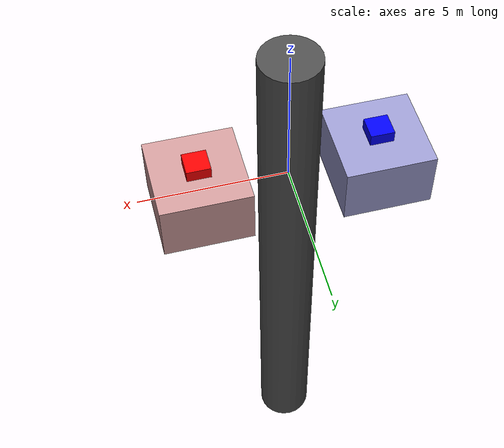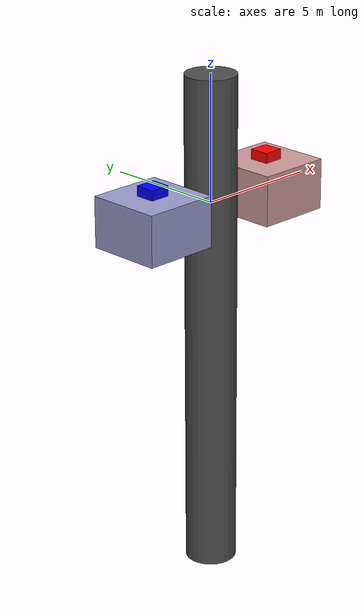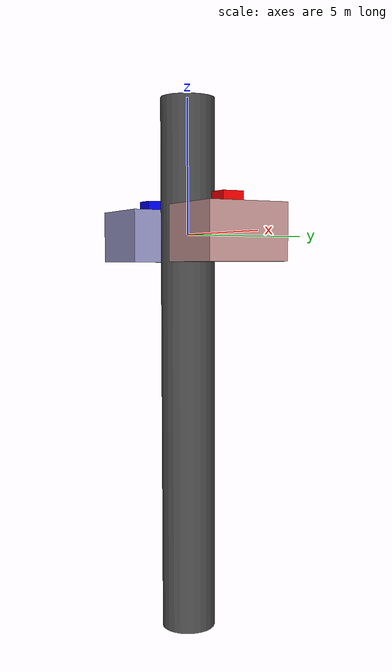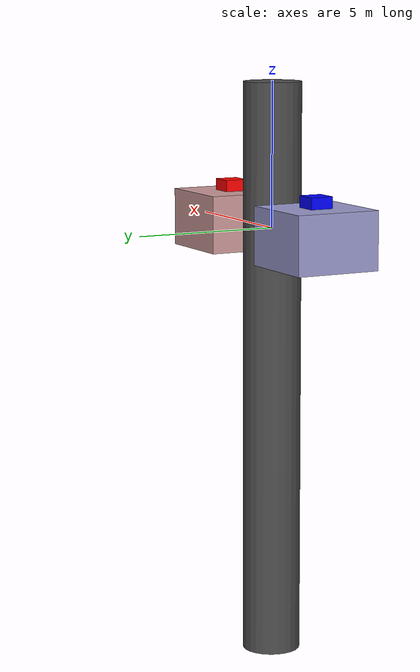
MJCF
<mujoco>
  <option gravity="0 0 -9.81"/>
  <worldbody>
    <!-- Elevator A -->
    <body name="elevator_A" pos="-3 0 0">
      <geom type="box" size="1.5 1.5 1" rgba="0.6 0.6 0.8 1"/>
      <joint name="elevator_A_joint" type="slide" axis="0 0 1"/>
    </body>
    <body name="block_A" pos="-3 0 1">
      <geom type="box" size="0.4 0.4 0.4" density="1" rgba="0 0 1 1"/>
    </body>
    <body name="scale_A" pos="-3 0 -0.5">
      <geom type="box" size="0.4 0.4 0.1" rgba="0.7 0.7 0.7 1"/>
    </body>

    <!-- Elevator B -->
    <body name="elevator_B" pos="3 0 0">
      <geom type="box" size="1.5 1.5 1" rgba="0.8 0.6 0.6 1"/>
      <joint name="elevator_B_joint" type="slide" axis="0 0 1"/>
    </body>
    <body name="block_B" pos="3 0 1">
      <geom type="box" size="0.4 0.4 0.4" density="1" rgba="1 0 0 1"/>
    </body>
    <body name="scale_B" pos="3 0 -0.5">
      <geom type="box" size="0.4 0.4 0.1" rgba="0.7 0.7 0.7 1"/>
    </body>

    <!-- Shaft -->
    <body name="shaft" pos="0 0 -5">
      <geom type="cylinder" size="1 10" rgba="0.3 0.3 0.3 1"/>
    </body>
  </worldbody>
</mujoco>
